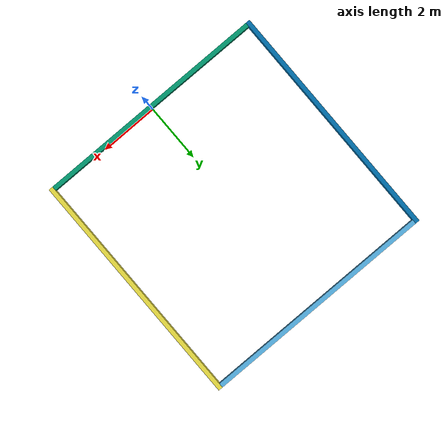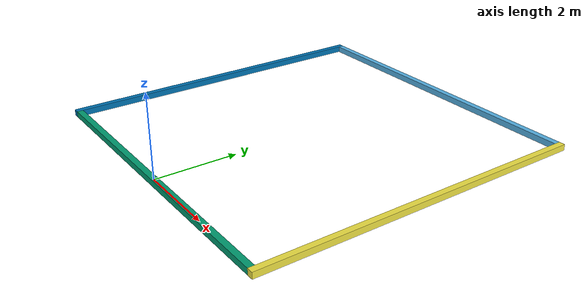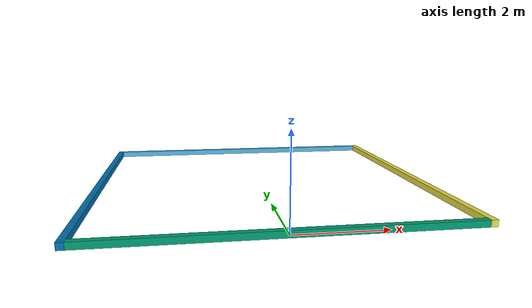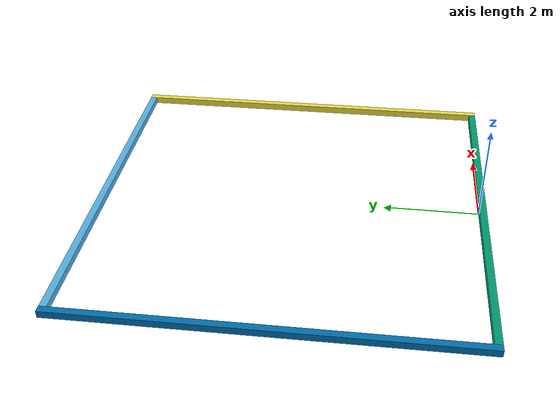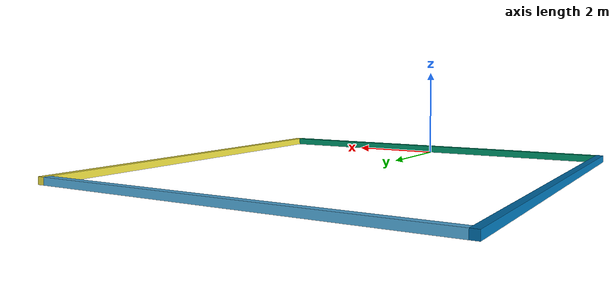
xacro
<?xml version="1.0"?>
<robot name="field" xmlns:xacro="http://ros.org/wiki/xacro">
  <xacro:property name="field_width" value="8.0" />
  <xacro:property name="field_height" value="8.0" />
  <xacro:property name="fence_height" value="0.15" />
  <xacro:property name="fence_width" value="0.15" />

  <xacro:macro name="fence" params="name xy length yaw_deg">
    <link name="${name}_link">
      <origin xyz="0 0 0" rpy="0 0 0" />
      <visual>
        <geometry>
          <box size="${length} ${fence_width} ${fence_height}" />
        </geometry>
      </visual>
      <collision>
        <geometry>
          <box size="${length} ${fence_width} ${fence_height}" />
        </geometry>
      </collision>
      <inertial>
        <mass value="1" />
        <origin xyz="${xy} 0" rpy="0 0 ${radians(yaw_deg)}" />
        <inertia ixx="0.1" ixy="0" ixz="0" iyy="0.1" iyz="0" izz="0.1" />
      </inertial>
    </link>
    <joint name="${name}_joint" type="fixed">
      <parent link="root" />
      <child link="${name}_link" />
      <origin xyz="${xy} ${fence_height/2}" rpy="0 0 ${radians(yaw_deg)}" />
    </joint>
  </xacro:macro>

  <link name="root" />

  <xacro:fence name="north_fence" xy="0 ${field_height+fence_width/2}" length="${field_width}"
    yaw_deg="0" />
  <xacro:fence name="south_fence" xy="0 ${-fence_width/2}" length="${field_width}" yaw_deg="0" />
  <xacro:fence name="east_fence" xy="${field_width/2+fence_width/2} ${field_height/2}"
    length="${field_height+fence_width*2}"
    yaw_deg="90" />
  <xacro:fence name="west_fence"
    xy="${-field_width/2-fence_width/2} ${field_height/2}"
    length="${field_height+fence_width*2}"
    yaw_deg="90" />

  <gazebo>
    <static>true</static>
  </gazebo>
</robot>
